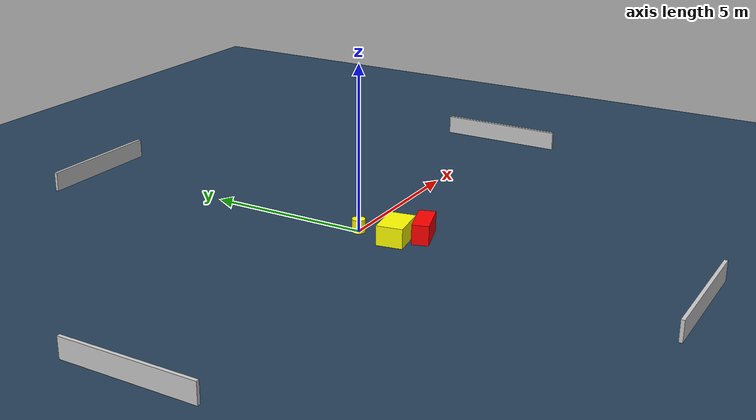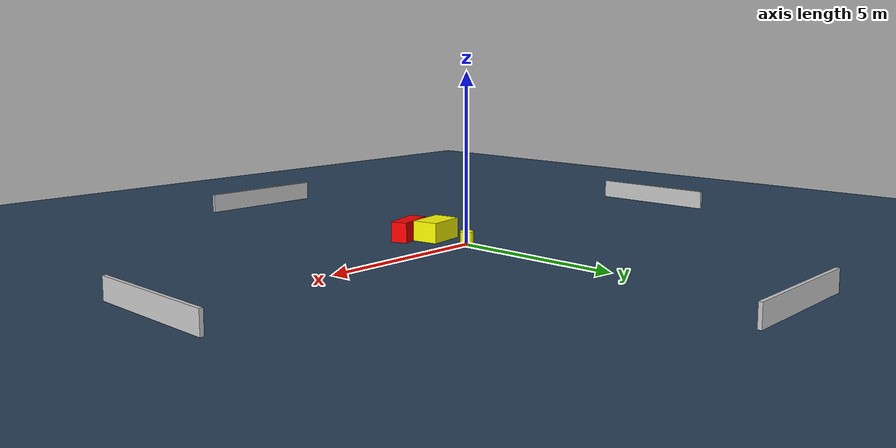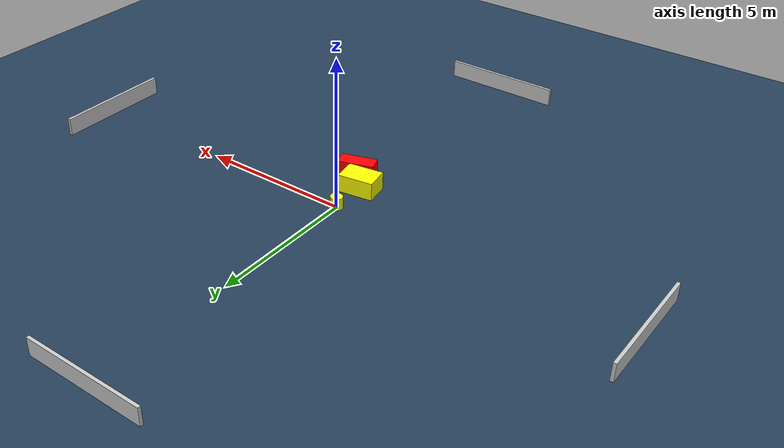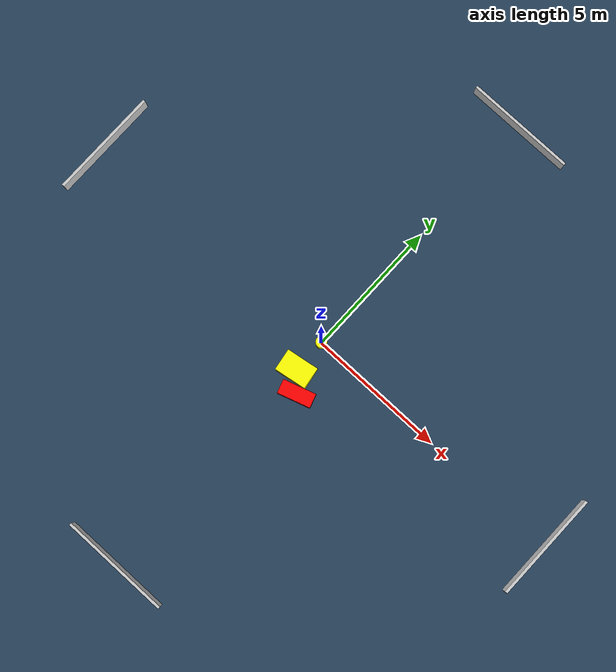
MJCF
<?xml version="1.0" ?>
<mujoco model="generated_environment">
  <option timestep="0.01" integrator="RK4" cone="elliptic"/>
  <default>
    <geom density="1"/>
  </default>
  <asset>
    <texture builtin="gradient" height="3072" name="skybox" rgb1="0.3 0.5 0.7" rgb2="0 0 0" type="skybox" width="512"/>
    <texture builtin="checker" height="300" name="groundplane" rgb1="0.2 0.3 0.4" rgb2="0.1 0.2 0.3" type="2d" width="300"/>
    <material name="groundplane" reflectance="0.2" texrepeat="5 5" texture="groundplane"/>
  </asset>
  <worldbody>
    <light dir="0 0 -1" directional="true" pos="0 0 1.5"/>
    <geom condim="3" friction="0.5 0.005 0.001" material="groundplane" name="floor" pos="0 0 0" size="0 0 0.05" type="plane"/>
    <body name="walls">
      <geom name="wall_1" condim="4" pos="-10.0 0.0 0.3" rgba="0.800000011920929 0.800000011920929 0.800000011920929 1.0" size="0.05 2.0 0.3" type="box"/>
      <geom name="wall_2" condim="4" pos="10.0 0.0 0.3" rgba="0.800000011920929 0.800000011920929 0.800000011920929 1.0" size="0.05 2.0 0.3" type="box"/>
      <geom name="wall_3" condim="4" pos="0.0 -10.0 0.3" rgba="0.800000011920929 0.800000011920929 0.800000011920929 1.0" size="2.0 0.05 0.3" type="box"/>
      <geom name="wall_4" condim="4" pos="0.0 10.0 0.3" rgba="0.800000011920929 0.800000011920929 0.800000011920929 1.0" size="2.0 0.05 0.3" type="box"/>
    </body>
    <body name="robot">
      <joint name="joint_x" type="slide" pos="0 0 0" axis="1 0 0"/>
      <joint name="joint_y" type="slide" pos="0 0 0" axis="0 1 0"/>
      <geom name="robot" type="cylinder" pos="0.0 0.0 0.2" size="0.2 0.2 0.0" mass="5.0" friction="1.0 0.005 0.0001" condim="4" rgba="1.0 1.0 0.0 1.0"/>
    </body>
    <body name="obstacle_1_movable">
      <geom name="obstacle_1_movable" condim="4" pos="0.008007728150184962 -1.2362387747769301 0.3" euler="0 0 9.070984870298382" friction="0.0 0.005 0.001" rgba="1.0 1.0 0.0 1.0" size="0.5844707918727263 0.3971349496962704 0.3" type="box" mass="0.1"/>
      <joint type="free"/>
    </body>
    <body name="obstacle_2_static">
      <geom name="obstacle_2_static" condim="4" pos="0.567922008763841 -1.8333996892021545 0.3" euler="0 0 197.71498789783365" friction="0.0 0.005 0.001" rgba="1.0 0.0 0.0 1.0" size="0.5972476376970249 0.25177807093073784 0.3" type="box"/>
    </body>
  </worldbody>
  <actuator>
    <motor name="actuator_x" joint="joint_x" gear="1" ctrlrange="-1 1"/>
    <motor name="actuator_y" joint="joint_y" gear="1" ctrlrange="-1 1"/>
  </actuator>
</mujoco>
